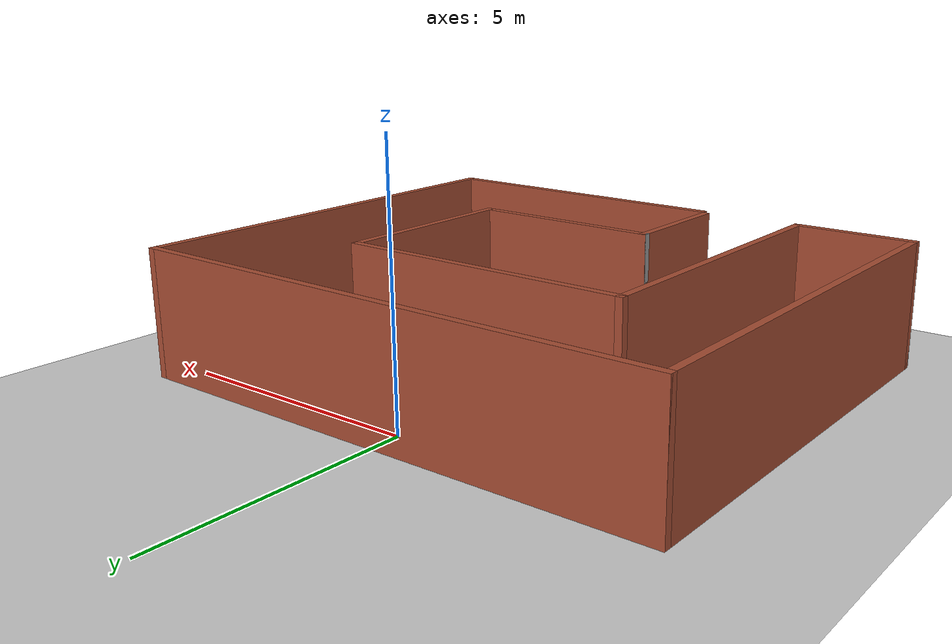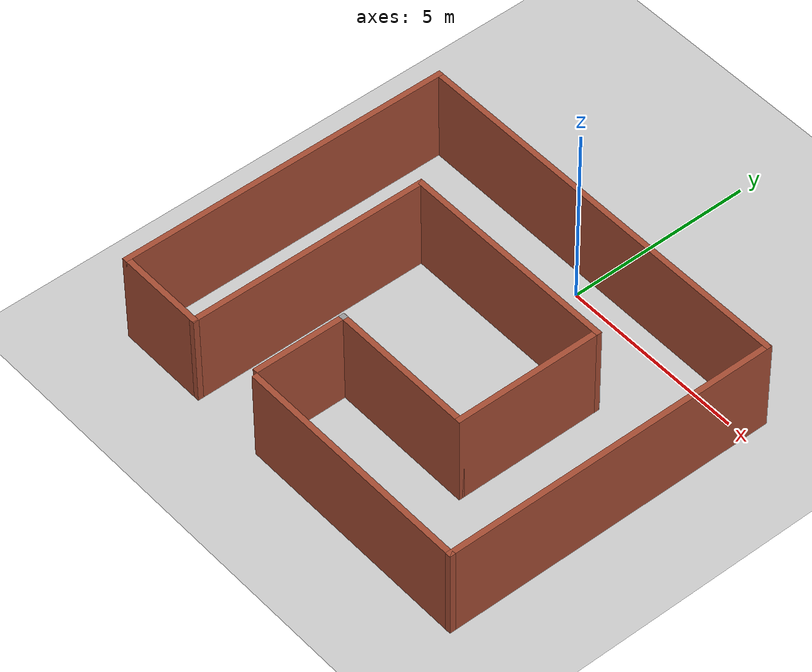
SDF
<sdf version="1.4">
 <world name="default">
  <light name="sun" type="directional">
   <pose>0 0 10 0 -0 0</pose>
   <diffuse>0.8 0.8 0.8 1</diffuse>
   <specular>0.2 0.2 0.2 1</specular>
   <attenuation>
    <range>1000</range>
    <constant>0.9</constant>
    <linear>0.01</linear>
    <quadratic>0.001</quadratic>
   </attenuation>
   <direction>0.5 0.1 -0.9</direction>
  </light>
  <model name="ground_plane">
   <static>1</static>
   <link name="link">
    <collision name="collision">
     <geometry><plane><normal>0 0 1</normal><size>100 100</size></plane></geometry>
     <surface><friction><ode><mu>100</mu><mu2>50</mu2></ode></friction></surface>
    </collision>
    <visual name="visual">
     <cast_shadows>0</cast_shadows>
     <geometry><plane><normal>0 0 1</normal><size>100 100</size></plane></geometry>
     <material>
      <script><uri>file://media/materials/scripts/gazebo.material</uri><name>Gazebo/Grey</name></script>
     </material>
    </visual>
    <velocity_decay><linear>0</linear><angular>0</angular></velocity_decay>
   </link>
  </model>
  <scene><ambient>0.4 0.4 0.4 1</ambient><background>0.7 0.7 0.7 1</background><shadows>0</shadows></scene>
  <physics type="ode">
   <max_step_size>0.01</max_step_size>
   <real_time_factor>1</real_time_factor>
   <real_time_update_rate>0</real_time_update_rate>
   <gravity>0 0 -9.8</gravity>
  </physics>
  <include><uri>model://Circuit_ql_2</uri><pose>0 -3.85 0 0 0 1.567</pose></include>
 </world>
</sdf>

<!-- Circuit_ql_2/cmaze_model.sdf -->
<sdf version='1.6'>
  <model name='C_maze'>
    <pose frame=''>1.295 -3.225 0 0 -0 0</pose>
    <link name='Wall_0'>
      <collision name='Wall_0_Collision'>
        <geometry>
          <box>
            <size>2.5 0.15 2.5</size>
          </box>
        </geometry>
        <pose frame=''>0 0 1.25 0 -0 0</pose>
      </collision>
      <visual name='Wall_0_Visual'>
        <pose frame=''>0 0 1.25 0 -0 0</pose>
        <geometry>
          <box>
            <size>2.5 0.15 2.5</size>
          </box>
        </geometry>
        <material>
          <script>
            <uri>file://media/materials/scripts/gazebo.material</uri>
            <name>Gazebo/Bricks</name>
          </script>
          <ambient>1 1 1 1</ambient>
        </material>
      </visual>
      <pose frame=''>-3.1 1.075 0 0 -0 0</pose>
    </link>
    <link name='Wall_1'>
      <collision name='Wall_1_Collision'>
        <geometry>
          <box>
            <size>0.15 0.15 2.5</size>
          </box>
        </geometry>
        <pose frame=''>0 0 1.25 0 -0 0</pose>
      </collision>
      <visual name='Wall_1_Visual'>
        <pose frame=''>0 0 1.25 0 -0 0</pose>
        <geometry>
          <box>
            <size>0.15 0.15 2.5</size>
          </box>
        </geometry>
        <material>
          <script>
            <uri>file://media/materials/scripts/gazebo.material</uri>
            <name>Gazebo/Grey</name>
          </script>
          <ambient>1 1 1 1</ambient>
        </material>
      </visual>
      <pose frame=''>-1.925 1.075 0 0 -0 0</pose>
    </link>
    <link name='Wall_10'>
      <collision name='Wall_10_Collision'>
        <geometry>
          <box>
            <size>6.5 0.15 2.5</size>
          </box>
        </geometry>
        <pose frame=''>0 0 1.25 0 -0 0</pose>
      </collision>
      <visual name='Wall_10_Visual'>
        <pose frame=''>0 0 1.25 0 -0 0</pose>
        <geometry>
          <box>
            <size>6.5 0.15 2.5</size>
          </box>
        </geometry>
        <material>
          <script>
            <uri>file://media/materials/scripts/gazebo.material</uri>
            <name>Gazebo/Bricks</name>
          </script>
          <ambient>1 1 1 1</ambient>
        </material>
      </visual>
      <pose frame=''>-4.425 -2.25 0 0 -0 1.5708</pose>
    </link>
    <link name='Wall_2'>
      <collision name='Wall_2_Collision'>
        <geometry>
          <box>
            <size>4 0.15 2.5</size>
          </box>
        </geometry>
        <pose frame=''>0 0 1.25 0 -0 0</pose>
      </collision>
      <visual name='Wall_2_Visual'>
        <pose frame=''>0 0 1.25 0 -0 0</pose>
        <geometry>
          <box>
            <size>4 0.15 2.5</size>
          </box>
        </geometry>
        <material>
          <script>
            <uri>file://media/materials/scripts/gazebo.material</uri>
            <name>Gazebo/Bricks</name>
          </script>
          <ambient>1 1 1 1</ambient>
        </material>
      </visual>
      <pose frame=''>-1.925 -0.85 0 0 0 -1.5708</pose>
    </link>
    <link name='Wall_3'>
      <collision name='Wall_3_Collision'>
        <geometry>
          <box>
            <size>4 0.15 2.5</size>
          </box>
        </geometry>
        <pose frame=''>0 0 1.25 0 -0 0</pose>
      </collision>
      <visual name='Wall_3_Visual'>
        <pose frame=''>0 0 1.25 0 -0 0</pose>
        <geometry>
          <box>
            <size>4 0.15 2.5</size>
          </box>
        </geometry>
        <material>
          <script>
            <uri>file://media/materials/scripts/gazebo.material</uri>
            <name>Gazebo/Bricks</name>
          </script>
          <ambient>1 1 1 1</ambient>
        </material>
      </visual>
      <pose frame=''>0 -2.775 0 0 -0 0</pose>
    </link>
    <link name='Wall_4'>
      <collision name='Wall_4_Collision'>
        <geometry>
          <box>
            <size>6 0.15 2.5</size>
          </box>
        </geometry>
        <pose frame=''>0 0 1.25 0 -0 0</pose>
      </collision>
      <visual name='Wall_4_Visual'>
        <pose frame=''>0 0 1.25 0 -0 0</pose>
        <geometry>
          <box>
            <size>6 0.15 2.5</size>
          </box>
        </geometry>
        <material>
          <script>
            <uri>file://media/materials/scripts/gazebo.material</uri>
            <name>Gazebo/Bricks</name>
          </script>
          <ambient>1 1 1 1</ambient>
        </material>
      </visual>
      <pose frame=''>1.925 0.15 0 0 -0 1.5708</pose>
    </link>
    <link name='Wall_5'>
      <collision name='Wall_5_Collision'>
        <geometry>
          <box>
            <size>6.5 0.15 2.5</size>
          </box>
        </geometry>
        <pose frame=''>0 0 1.25 0 -0 0</pose>
      </collision>
      <visual name='Wall_5_Visual'>
        <pose frame=''>0 0 1.25 0 -0 0</pose>
        <geometry>
          <box>
            <size>6.5 0.15 2.5</size>
          </box>
        </geometry>
        <material>
          <script>
            <uri>file://media/materials/scripts/gazebo.material</uri>
            <name>Gazebo/Bricks</name>
          </script>
          <ambient>1 1 1 1</ambient>
        </material>
      </visual>
      <pose frame=''>-1.25 3.075 0 0 -0 3.14159</pose>
    </link>
    <link name='Wall_6'>
      <collision name='Wall_6_Collision'>
        <geometry>
          <box>
            <size>2.5 0.15 2.5</size>
          </box>
        </geometry>
        <pose frame=''>0 0 1.25 0 -0 0</pose>
      </collision>
      <visual name='Wall_6_Visual'>
        <pose frame=''>0 0 1.25 0 -0 0</pose>
        <geometry>
          <box>
            <size>2.5 0.15 2.5</size>
          </box>
        </geometry>
        <material>
          <script>
            <uri>file://media/materials/scripts/gazebo.material</uri>
            <name>Gazebo/Bricks</name>
          </script>
          <ambient>1 1 1 1</ambient>
        </material>
      </visual>
      <pose frame=''>-4.425 4.25 0 0 -0 1.5708</pose>
    </link>
    <link name='Wall_7'>
      <collision name='Wall_7_Collision'>
        <geometry>
          <box>
            <size>9 0.15 2.5</size>
          </box>
        </geometry>
        <pose frame=''>0 0 1.25 0 -0 0</pose>
      </collision>
      <visual name='Wall_7_Visual'>
        <pose frame=''>0 0 1.25 0 -0 0</pose>
        <geometry>
          <box>
            <size>9 0.15 2.5</size>
          </box>
        </geometry>
        <material>
          <script>
            <uri>file://media/materials/scripts/gazebo.material</uri>
            <name>Gazebo/Bricks</name>
          </script>
          <ambient>1 1 1 1</ambient>
        </material>
      </visual>
      <pose frame=''>0 5.425 0 0 -0 0</pose>
    </link>
    <link name='Wall_8'>
      <collision name='Wall_8_Collision'>
        <geometry>
          <box>
            <size>11 0.15 2.5</size>
          </box>
        </geometry>
        <pose frame=''>0 0 1.25 0 -0 0</pose>
      </collision>
      <visual name='Wall_8_Visual'>
        <pose frame=''>0 0 1.25 0 -0 0</pose>
        <geometry>
          <box>
            <size>11 0.15 2.5</size>
          </box>
        </geometry>
        <material>
          <script>
            <uri>file://media/materials/scripts/gazebo.material</uri>
            <name>Gazebo/Bricks</name>
          </script>
          <ambient>1 1 1 1</ambient>
        </material>
      </visual>
      <pose frame=''>4.425 0 0 0 0 -1.5708</pose>
    </link>
    <link name='Wall_9'>
      <collision name='Wall_9_Collision'>
        <geometry>
          <box>
            <size>9 0.15 2.5</size>
          </box>
        </geometry>
        <pose frame=''>0 0 1.25 0 -0 0</pose>
      </collision>
      <visual name='Wall_9_Visual'>
        <pose frame=''>0 0 1.25 0 -0 0</pose>
        <geometry>
          <box>
            <size>9 0.15 2.5</size>
          </box>
        </geometry>
        <material>
          <script>
            <uri>file://media/materials/scripts/gazebo.material</uri>
            <name>Gazebo/Bricks</name>
          </script>
          <ambient>1 1 1 1</ambient>
        </material>
      </visual>
      <pose frame=''>0 -5.425 0 0 -0 3.14159</pose>
    </link>
    <static>1</static>
  </model>
</sdf>
